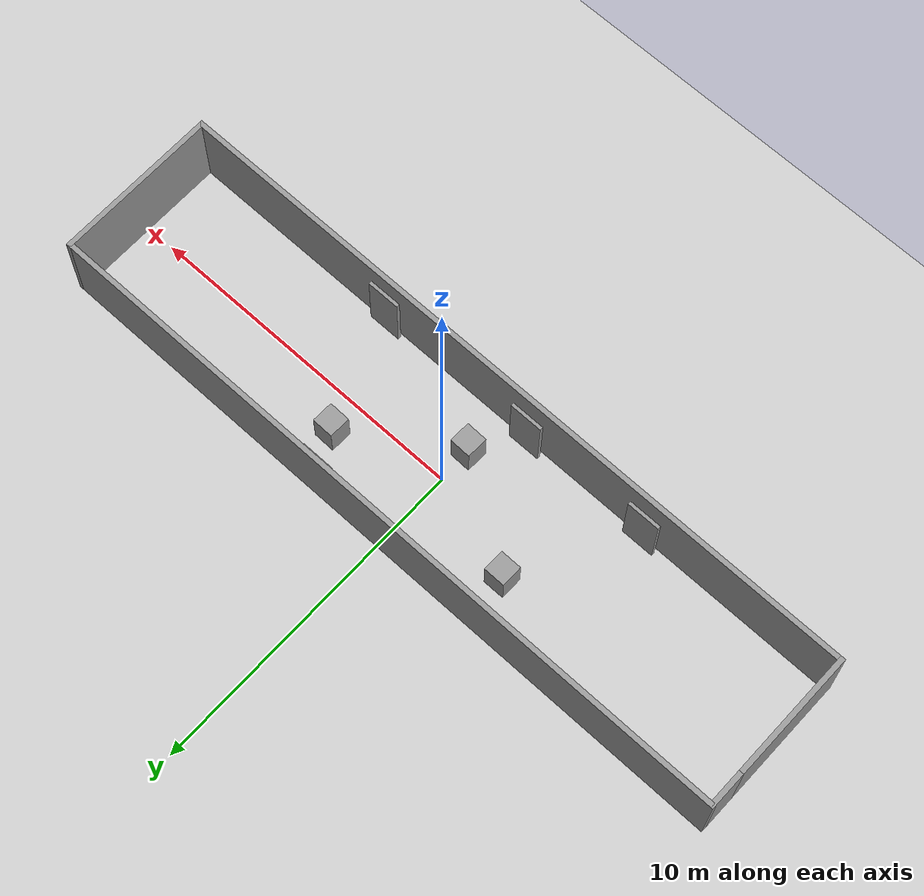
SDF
<sdf version="1.6">
 <world name="default">
  <light name="sun" type="directional">
   <pose>0 0 10 0 -0 0</pose>
   <diffuse>0.8 0.8 0.8 1</diffuse>
   <specular>0.2 0.2 0.2 1</specular>
   <attenuation>
    <range>1000</range>
    <constant>0.9</constant>
    <linear>0.01</linear>
    <quadratic>0.001</quadratic>
   </attenuation>
   <direction>-0.5 0.1 -0.9</direction>
  </light>
  <model name="ground_plane">
   <static>1</static>
   <link name="link">
    <collision name="collision">
     <geometry><plane><normal>0 0 1</normal><size>100 100</size></plane></geometry>
     <surface><friction><ode><mu>100</mu><mu2>50</mu2></ode></friction></surface>
    </collision>
    <visual name="visual">
     <cast_shadows>0</cast_shadows>
     <geometry><plane><normal>0 0 1</normal><size>100 100</size></plane></geometry>
     <material>
      <script><uri>file://media/materials/scripts/gazebo.material</uri><name>Gazebo/Grey</name></script>
     </material>
    </visual>
   </link>
  </model>
  <gravity>0 0 -9.8</gravity>
  <magnetic_field>6e-06 2.3e-05 -4.2e-05</magnetic_field>
  <atmosphere type="adiabatic"/>
  <physics name="default_physics" default="0" type="ode">
   <max_step_size>0.001</max_step_size>
   <real_time_factor>1</real_time_factor>
   <real_time_update_rate>1000</real_time_update_rate>
  </physics>
  <scene><ambient>0.4 0.4 0.4 1</ambient><background>0.7 0.7 0.7 1</background><shadows>1</shadows></scene>
  <spherical_coordinates>
   <surface_model>EARTH_WGS84</surface_model>
   <latitude_deg>0</latitude_deg>
   <longitude_deg>0</longitude_deg>
   <elevation>0</elevation>
   <heading_deg>0</heading_deg>
  </spherical_coordinates>
  <model name="long_sq">
   <link name="Wall_1">
    <collision name="Wall_1_Collision">
     <geometry><box><size>4 0.15 2.5</size></box></geometry>
     <pose>0 0 1.25 0 -0 0</pose>
    </collision>
    <visual name="Wall_1_Visual">
     <pose>0 0 1.25 0 -0 0</pose>
     <geometry><box><size>4 0.15 2.5</size></box></geometry>
     <material>
      <script><uri>file://media/materials/scripts/gazebo.material</uri><name>Gazebo/Grey</name></script>
      <ambient>1 1 1 1</ambient>
     </material>
     <meta><layer>0</layer></meta>
    </visual>
    <pose>-10.925 -0.5 0 0 -0 -1.5708</pose>
   </link>
   <link name="Wall_2">
    <collision name="Wall_2_Collision">
     <geometry><box><size>22 0.15 2.5</size></box></geometry>
     <pose>0 0 1.25 0 -0 0</pose>
    </collision>
    <visual name="Wall_2_Visual">
     <pose>0 0 1.25 0 -0 0</pose>
     <geometry><box><size>22 0.15 2.5</size></box></geometry>
     <material>
      <script><uri>file://media/materials/scripts/gazebo.material</uri><name>Gazebo/Grey</name></script>
      <ambient>1 1 1 1</ambient>
     </material>
     <meta><layer>0</layer></meta>
    </visual>
    <pose>-0 -2.425 0 0 -0 0</pose>
   </link>
   <link name="Wall_3">
    <collision name="Wall_3_Collision">
     <geometry><box><size>5 0.15 2.5</size></box></geometry>
     <pose>0 0 1.25 0 -0 0</pose>
    </collision>
    <visual name="Wall_3_Visual">
     <pose>0 0 1.25 0 -0 0</pose>
     <geometry><box><size>5 0.15 2.5</size></box></geometry>
     <material>
      <script><uri>file://media/materials/scripts/gazebo.material</uri><name>Gazebo/Grey</name></script>
      <ambient>1 1 1 1</ambient>
     </material>
     <meta><layer>0</layer></meta>
    </visual>
    <pose>10.925 0 0 0 -0 1.5708</pose>
   </link>
   <link name="Wall_4">
    <collision name="Wall_4_Collision">
     <geometry><box><size>22 0.15 2.5</size></box></geometry>
     <pose>0 0 1.25 0 -0 0</pose>
    </collision>
    <visual name="Wall_4_Visual">
     <pose>0 0 1.25 0 -0 0</pose>
     <geometry><box><size>22 0.15 2.5</size></box></geometry>
     <material>
      <script><uri>file://media/materials/scripts/gazebo.material</uri><name>Gazebo/Grey</name></script>
      <ambient>1 1 1 1</ambient>
     </material>
     <meta><layer>0</layer></meta>
    </visual>
    <pose>-0 2.425 0 0 -0 3.14159</pose>
   </link>
   <link name="Wall_5">
    <collision name="Wall_5_Collision">
     <geometry><box><size>1.15 0.15 2.5</size></box></geometry>
     <pose>0 0 1.25 0 -0 0</pose>
    </collision>
    <visual name="Wall_5_Visual">
     <pose>0 0 1.25 0 -0 0</pose>
     <geometry><box><size>1.15 0.15 2.5</size></box></geometry>
     <material>
      <script><uri>file://media/materials/scripts/gazebo.material</uri><name>Gazebo/Grey</name></script>
      <ambient>1 1 1 1</ambient>
     </material>
     <meta><layer>0</layer></meta>
    </visual>
    <pose>-10.925 1.925 0 0 -0 -1.5708</pose>
   </link>
   <static>1</static>
  </model>
  <model name="tiny_box">
   <link name="link">
    <inertial>
     <mass>1</mass>
     <inertia>
      <ixx>0.166667</ixx>
      <ixy>0</ixy>
      <ixz>0</ixz>
      <iyy>0.166667</iyy>
      <iyz>0</iyz>
      <izz>0.166667</izz>
     </inertia>
    </inertial>
    <visual name="visual">
     <geometry><box><size>1 0.1 2</size></box></geometry>
     <material>
      <script><name>Gazebo/Grey</name><uri>file://media/materials/scripts/gazebo.material</uri></script>
      <shader type="pixel"><normal_map>__default__</normal_map></shader>
      <ambient>0.3 0.3 0.3 1</ambient>
      <diffuse>0.7 0.7 0.7 1</diffuse>
      <specular>0.01 0.01 0.01 1</specular>
      <emissive>0 0 0 1</emissive>
     </material>
    </visual>
    <collision name="collision">
     <geometry><box><size>1 0.1 2</size></box></geometry>
     <surface>
      <friction>
       <ode><mu>1</mu><mu2>1</mu2><fdir1>0 0 0</fdir1><slip1>0</slip1><slip2>0</slip2></ode>
       <torsional>
        <coefficient>1</coefficient>
        <patch_radius>0</patch_radius>
        <surface_radius>0</surface_radius>
        <use_patch_radius>1</use_patch_radius>
        <ode><slip>0</slip></ode>
       </torsional>
      </friction>
      <bounce><restitution_coefficient>0</restitution_coefficient><threshold>1e+06</threshold></bounce>
      <contact>
       <collide_without_contact>0</collide_without_contact>
       <collide_without_contact_bitmask>1</collide_without_contact_bitmask>
       <collide_bitmask>1</collide_bitmask>
       <ode>
        <soft_cfm>0</soft_cfm>
        <soft_erp>0.2</soft_erp>
        <kp>1e+13</kp>
        <kd>1</kd>
        <max_vel>0.01</max_vel>
        <min_depth>0</min_depth>
       </ode>
       <bullet>
        <split_impulse>1</split_impulse>
        <split_impulse_penetration_threshold>-0.01</split_impulse_penetration_threshold>
        <soft_cfm>0</soft_cfm>
        <soft_erp>0.2</soft_erp>
        <kp>1e+13</kp>
        <kd>1</kd>
       </bullet>
      </contact>
     </surface>
    </collision>
   </link>
   <static>0</static>
   <pose>-6.6437 2.28184 1 1e-06 -0 4.9e-05</pose>
  </model>
  <model name="tiny_box_clone">
   <link name="link">
    <inertial>
     <mass>1</mass>
     <inertia>
      <ixx>0.166667</ixx>
      <ixy>0</ixy>
      <ixz>0</ixz>
      <iyy>0.166667</iyy>
      <iyz>0</iyz>
      <izz>0.166667</izz>
     </inertia>
    </inertial>
    <visual name="visual">
     <geometry><box><size>1 0.1 2</size></box></geometry>
     <material>
      <script><name>Gazebo/Grey</name><uri>file://media/materials/scripts/gazebo.material</uri></script>
      <shader type="pixel"><normal_map>__default__</normal_map></shader>
      <ambient>0.3 0.3 0.3 1</ambient>
      <diffuse>0.7 0.7 0.7 1</diffuse>
      <specular>0.01 0.01 0.01 1</specular>
      <emissive>0 0 0 1</emissive>
     </material>
    </visual>
    <collision name="collision">
     <geometry><box><size>1 0.1 2</size></box></geometry>
     <surface>
      <friction>
       <ode><mu>1</mu><mu2>1</mu2><fdir1>0 0 0</fdir1><slip1>0</slip1><slip2>0</slip2></ode>
       <torsional>
        <coefficient>1</coefficient>
        <patch_radius>0</patch_radius>
        <surface_radius>0</surface_radius>
        <use_patch_radius>1</use_patch_radius>
        <ode><slip>0</slip></ode>
       </torsional>
      </friction>
      <bounce><restitution_coefficient>0</restitution_coefficient><threshold>1e+06</threshold></bounce>
      <contact>
       <collide_without_contact>0</collide_without_contact>
       <collide_without_contact_bitmask>1</collide_without_contact_bitmask>
       <collide_bitmask>1</collide_bitmask>
       <ode>
        <soft_cfm>0</soft_cfm>
        <soft_erp>0.2</soft_erp>
        <kp>1e+13</kp>
        <kd>1</kd>
        <max_vel>0.01</max_vel>
        <min_depth>0</min_depth>
       </ode>
       <bullet>
        <split_impulse>1</split_impulse>
        <split_impulse_penetration_threshold>-0.01</split_impulse_penetration_threshold>
        <soft_cfm>0</soft_cfm>
        <soft_erp>0.2</soft_erp>
        <kp>1e+13</kp>
        <kd>1</kd>
       </bullet>
      </contact>
     </surface>
    </collision>
   </link>
   <static>0</static>
   <pose>-4.88092 -2.17582 1 -2e-06 -0 8.9e-05</pose>
  </model>
  <model name="tiny_box_clone_0">
   <link name="link">
    <inertial>
     <mass>1</mass>
     <inertia>
      <ixx>0.166667</ixx>
      <ixy>0</ixy>
      <ixz>0</ixz>
      <iyy>0.166667</iyy>
      <iyz>0</iyz>
      <izz>0.166667</izz>
     </inertia>
    </inertial>
    <visual name="visual">
     <geometry><box><size>1 0.1 2</size></box></geometry>
     <material>
      <script><name>Gazebo/Grey</name><uri>file://media/materials/scripts/gazebo.material</uri></script>
      <shader type="pixel"><normal_map>__default__</normal_map></shader>
      <ambient>0.3 0.3 0.3 1</ambient>
      <diffuse>0.7 0.7 0.7 1</diffuse>
      <specular>0.01 0.01 0.01 1</specular>
      <emissive>0 0 0 1</emissive>
     </material>
    </visual>
    <collision name="collision">
     <geometry><box><size>1 0.1 2</size></box></geometry>
     <surface>
      <friction>
       <ode><mu>1</mu><mu2>1</mu2><fdir1>0 0 0</fdir1><slip1>0</slip1><slip2>0</slip2></ode>
       <torsional>
        <coefficient>1</coefficient>
        <patch_radius>0</patch_radius>
        <surface_radius>0</surface_radius>
        <use_patch_radius>1</use_patch_radius>
        <ode><slip>0</slip></ode>
       </torsional>
      </friction>
      <bounce><restitution_coefficient>0</restitution_coefficient><threshold>1e+06</threshold></bounce>
      <contact>
       <collide_without_contact>0</collide_without_contact>
       <collide_without_contact_bitmask>1</collide_without_contact_bitmask>
       <collide_bitmask>1</collide_bitmask>
       <ode>
        <soft_cfm>0</soft_cfm>
        <soft_erp>0.2</soft_erp>
        <kp>1e+13</kp>
        <kd>1</kd>
        <max_vel>0.01</max_vel>
        <min_depth>0</min_depth>
       </ode>
       <bullet>
        <split_impulse>1</split_impulse>
        <split_impulse_penetration_threshold>-0.01</split_impulse_penetration_threshold>
        <soft_cfm>0</soft_cfm>
        <soft_erp>0.2</soft_erp>
        <kp>1e+13</kp>
        <kd>1</kd>
       </bullet>
      </contact>
     </surface>
    </collision>
   </link>
   <static>0</static>
   <pose>-1.49537 2.27619 1 1e-06 -2e-06 4.3e-05</pose>
  </model>
  <model name="tiny_box_clone_1">
   <link name="link">
    <inertial>
     <mass>1</mass>
     <inertia>
      <ixx>0.166667</ixx>
      <ixy>0</ixy>
      <ixz>0</ixz>
      <iyy>0.166667</iyy>
      <iyz>0</iyz>
      <izz>0.166667</izz>
     </inertia>
    </inertial>
    <visual name="visual">
     <geometry><box><size>1 0.1 2</size></box></geometry>
     <material>
      <script><name>Gazebo/Grey</name><uri>file://media/materials/scripts/gazebo.material</uri></script>
      <shader type="pixel"><normal_map>__default__</normal_map></shader>
      <ambient>0.3 0.3 0.3 1</ambient>
      <diffuse>0.7 0.7 0.7 1</diffuse>
      <specular>0.01 0.01 0.01 1</specular>
      <emissive>0 0 0 1</emissive>
     </material>
    </visual>
    <collision name="collision">
     <geometry><box><size>1 0.1 2</size></box></geometry>
     <surface>
      <friction>
       <ode><mu>1</mu><mu2>1</mu2><fdir1>0 0 0</fdir1><slip1>0</slip1><slip2>0</slip2></ode>
       <torsional>
        <coefficient>1</coefficient>
        <patch_radius>0</patch_radius>
        <surface_radius>0</surface_radius>
        <use_patch_radius>1</use_patch_radius>
        <ode><slip>0</slip></ode>
       </torsional>
      </friction>
      <bounce><restitution_coefficient>0</restitution_coefficient><threshold>1e+06</threshold></bounce>
      <contact>
       <collide_without_contact>0</collide_without_contact>
       <collide_without_contact_bitmask>1</collide_without_contact_bitmask>
       <collide_bitmask>1</collide_bitmask>
       <ode>
        <soft_cfm>0</soft_cfm>
        <soft_erp>0.2</soft_erp>
        <kp>1e+13</kp>
        <kd>1</kd>
        <max_vel>0.01</max_vel>
        <min_depth>0</min_depth>
       </ode>
       <bullet>
        <split_impulse>1</split_impulse>
        <split_impulse_penetration_threshold>-0.01</split_impulse_penetration_threshold>
        <soft_cfm>0</soft_cfm>
        <soft_erp>0.2</soft_erp>
        <kp>1e+13</kp>
        <kd>1</kd>
       </bullet>
      </contact>
     </surface>
    </collision>
   </link>
   <static>0</static>
   <pose>-0.92968 -2.17683 1 3e-06 -0 -0.00013</pose>
  </model>
  <model name="tiny_box_clone_2">
   <link name="link">
    <inertial>
     <mass>1</mass>
     <inertia>
      <ixx>0.166667</ixx>
      <ixy>0</ixy>
      <ixz>0</ixz>
      <iyy>0.166667</iyy>
      <iyz>0</iyz>
      <izz>0.166667</izz>
     </inertia>
    </inertial>
    <visual name="visual">
     <geometry><box><size>1 0.1 2</size></box></geometry>
     <material>
      <script><name>Gazebo/Grey</name><uri>file://media/materials/scripts/gazebo.material</uri></script>
      <shader type="pixel"><normal_map>__default__</normal_map></shader>
      <ambient>0.3 0.3 0.3 1</ambient>
      <diffuse>0.7 0.7 0.7 1</diffuse>
      <specular>0.01 0.01 0.01 1</specular>
      <emissive>0 0 0 1</emissive>
     </material>
    </visual>
    <collision name="collision">
     <geometry><box><size>1 0.1 2</size></box></geometry>
     <surface>
      <friction>
       <ode><mu>1</mu><mu2>1</mu2><fdir1>0 0 0</fdir1><slip1>0</slip1><slip2>0</slip2></ode>
       <torsional>
        <coefficient>1</coefficient>
        <patch_radius>0</patch_radius>
        <surface_radius>0</surface_radius>
        <use_patch_radius>1</use_patch_radius>
        <ode><slip>0</slip></ode>
       </torsional>
      </friction>
      <bounce><restitution_coefficient>0</restitution_coefficient><threshold>1e+06</threshold></bounce>
      <contact>
       <collide_without_contact>0</collide_without_contact>
       <collide_without_contact_bitmask>1</collide_without_contact_bitmask>
       <collide_bitmask>1</collide_bitmask>
       <ode>
        <soft_cfm>0</soft_cfm>
        <soft_erp>0.2</soft_erp>
        <kp>1e+13</kp>
        <kd>1</kd>
        <max_vel>0.01</max_vel>
        <min_depth>0</min_depth>
       </ode>
       <bullet>
        <split_impulse>1</split_impulse>
        <split_impulse_penetration_threshold>-0.01</split_impulse_penetration_threshold>
        <soft_cfm>0</soft_cfm>
        <soft_erp>0.2</soft_erp>
        <kp>1e+13</kp>
        <kd>1</kd>
       </bullet>
      </contact>
     </surface>
    </collision>
   </link>
   <static>0</static>
   <pose>2.23848 2.25635 1 1e-06 -1e-06 5.3e-05</pose>
  </model>
  <model name="tiny_box_clone_3">
   <link name="link">
    <inertial>
     <mass>1</mass>
     <inertia>
      <ixx>0.166667</ixx>
      <ixy>0</ixy>
      <ixz>0</ixz>
      <iyy>0.166667</iyy>
      <iyz>0</iyz>
      <izz>0.166667</izz>
     </inertia>
    </inertial>
    <visual name="visual">
     <geometry><box><size>1 0.1 2</size></box></geometry>
     <material>
      <script><name>Gazebo/Grey</name><uri>file://media/materials/scripts/gazebo.material</uri></script>
      <shader type="pixel"><normal_map>__default__</normal_map></shader>
      <ambient>0.3 0.3 0.3 1</ambient>
      <diffuse>0.7 0.7 0.7 1</diffuse>
      <specular>0.01 0.01 0.01 1</specular>
      <emissive>0 0 0 1</emissive>
     </material>
    </visual>
    <collision name="collision">
     <geometry><box><size>1 0.1 2</size></box></geometry>
     <surface>
      <friction>
       <ode><mu>1</mu><mu2>1</mu2><fdir1>0 0 0</fdir1><slip1>0</slip1><slip2>0</slip2></ode>
       <torsional>
        <coefficient>1</coefficient>
        <patch_radius>0</patch_radius>
        <surface_radius>0</surface_radius>
        <use_patch_radius>1</use_patch_radius>
        <ode><slip>0</slip></ode>
       </torsional>
      </friction>
      <bounce><restitution_coefficient>0</restitution_coefficient><threshold>1e+06</threshold></bounce>
      <contact>
       <collide_without_contact>0</collide_without_contact>
       <collide_without_contact_bitmask>1</collide_without_contact_bitmask>
       <collide_bitmask>1</collide_bitmask>
       <ode>
        <soft_cfm>0</soft_cfm>
        <soft_erp>0.2</soft_erp>
        <kp>1e+13</kp>
        <kd>1</kd>
        <max_vel>0.01</max_vel>
        <min_depth>0</min_depth>
       </ode>
       <bullet>
        <split_impulse>1</split_impulse>
        <split_impulse_penetration_threshold>-0.01</split_impulse_penetration_threshold>
        <soft_cfm>0</soft_cfm>
        <soft_erp>0.2</soft_erp>
        <kp>1e+13</kp>
        <kd>1</kd>
       </bullet>
      </contact>
     </surface>
    </collision>
   </link>
   <static>0</static>
   <pose>4.10825 -2.22656 0.999998 0 -3e-06 -0.000122</pose>
  </model>
  <model name="tiny_box_clone_4">
   <link name="link">
    <inertial>
     <mass>1</mass>
     <inertia>
      <ixx>0.166667</ixx>
      <ixy>0</ixy>
      <ixz>0</ixz>
      <iyy>0.166667</iyy>
      <iyz>0</iyz>
      <izz>0.166667</izz>
     </inertia>
    </inertial>
    <visual name="visual">
     <geometry><box><size>1 0.1 2</size></box></geometry>
     <material>
      <script><name>Gazebo/Grey</name><uri>file://media/materials/scripts/gazebo.material</uri></script>
      <shader type="pixel"><normal_map>__default__</normal_map></shader>
      <ambient>0.3 0.3 0.3 1</ambient>
      <diffuse>0.7 0.7 0.7 1</diffuse>
      <specular>0.01 0.01 0.01 1</specular>
      <emissive>0 0 0 1</emissive>
     </material>
    </visual>
    <collision name="collision">
     <geometry><box><size>1 0.1 2</size></box></geometry>
     <surface>
      <friction>
       <ode><mu>1</mu><mu2>1</mu2><fdir1>0 0 0</fdir1><slip1>0</slip1><slip2>0</slip2></ode>
       <torsional>
        <coefficient>1</coefficient>
        <patch_radius>0</patch_radius>
        <surface_radius>0</surface_radius>
        <use_patch_radius>1</use_patch_radius>
        <ode><slip>0</slip></ode>
       </torsional>
      </friction>
      <bounce><restitution_coefficient>0</restitution_coefficient><threshold>1e+06</threshold></bounce>
      <contact>
       <collide_without_contact>0</collide_without_contact>
       <collide_without_contact_bitmask>1</collide_without_contact_bitmask>
       <collide_bitmask>1</collide_bitmask>
       <ode>
        <soft_cfm>0</soft_cfm>
        <soft_erp>0.2</soft_erp>
        <kp>1e+13</kp>
        <kd>1</kd>
        <max_vel>0.01</max_vel>
        <min_depth>0</min_depth>
       </ode>
       <bullet>
        <split_impulse>1</split_impulse>
        <split_impulse_penetration_threshold>-0.01</split_impulse_penetration_threshold>
        <soft_cfm>0</soft_cfm>
        <soft_erp>0.2</soft_erp>
        <kp>1e+13</kp>
        <kd>1</kd>
       </bullet>
      </contact>
     </surface>
    </collision>
   </link>
   <static>0</static>
   <pose>6.86601 2.29998 0.999994 1e-06 -1e-06 -3e-06</pose>
  </model>
  <model name="box_65_clone">
   <link name="link">
    <inertial>
     <mass>1</mass>
     <inertia>
      <ixx>0.166667</ixx>
      <ixy>0</ixy>
      <ixz>0</ixz>
      <iyy>0.166667</iyy>
      <iyz>0</iyz>
      <izz>0.166667</izz>
     </inertia>
    </inertial>
    <visual name="visual">
     <geometry><box><size>0.65 0.65 1</size></box></geometry>
     <material>
      <script><name>Gazebo/Grey</name><uri>file://media/materials/scripts/gazebo.material</uri></script>
      <shader type="pixel"><normal_map>__default__</normal_map></shader>
      <ambient>0.3 0.3 0.3 1</ambient>
      <diffuse>0.7 0.7 0.7 1</diffuse>
      <specular>0.01 0.01 0.01 1</specular>
      <emissive>0 0 0 1</emissive>
     </material>
    </visual>
    <collision name="collision">
     <geometry><box><size>0.65 0.65 1</size></box></geometry>
     <surface>
      <friction>
       <ode><mu>1</mu><mu2>1</mu2><fdir1>0 0 0</fdir1><slip1>0</slip1><slip2>0</slip2></ode>
       <torsional>
        <coefficient>1</coefficient>
        <patch_radius>0</patch_radius>
        <surface_radius>0</surface_radius>
        <use_patch_radius>1</use_patch_radius>
        <ode><slip>0</slip></ode>
       </torsional>
      </friction>
      <bounce><restitution_coefficient>0</restitution_coefficient><threshold>1e+06</threshold></bounce>
      <contact>
       <collide_without_contact>0</collide_without_contact>
       <collide_without_contact_bitmask>1</collide_without_contact_bitmask>
       <collide_bitmask>1</collide_bitmask>
       <ode>
        <soft_cfm>0</soft_cfm>
        <soft_erp>0.2</soft_erp>
        <kp>1e+13</kp>
        <kd>1</kd>
        <max_vel>0.01</max_vel>
        <min_depth>0</min_depth>
       </ode>
       <bullet>
        <split_impulse>1</split_impulse>
        <split_impulse_penetration_threshold>-0.01</split_impulse_penetration_threshold>
        <soft_cfm>0</soft_cfm>
        <soft_erp>0.2</soft_erp>
        <kp>1e+13</kp>
        <kd>1</kd>
       </bullet>
      </contact>
     </surface>
    </collision>
   </link>
   <static>0</static>
   <pose>3 1 0.499998 -2e-06 -4e-06 -0.021464</pose>
  </model>
  <model name="box_65_clone_0">
   <link name="link">
    <inertial>
     <mass>1</mass>
     <inertia>
      <ixx>0.166667</ixx>
      <ixy>0</ixy>
      <ixz>0</ixz>
      <iyy>0.166667</iyy>
      <iyz>0</iyz>
      <izz>0.166667</izz>
     </inertia>
    </inertial>
    <visual name="visual">
     <geometry><box><size>0.65 0.65 1</size></box></geometry>
     <material>
      <script><name>Gazebo/Grey</name><uri>file://media/materials/scripts/gazebo.material</uri></script>
      <shader type="pixel"><normal_map>__default__</normal_map></shader>
      <ambient>0.3 0.3 0.3 1</ambient>
      <diffuse>0.7 0.7 0.7 1</diffuse>
      <specular>0.01 0.01 0.01 1</specular>
      <emissive>0 0 0 1</emissive>
     </material>
    </visual>
    <collision name="collision">
     <geometry><box><size>0.65 0.65 1</size></box></geometry>
     <surface>
      <friction>
       <ode><mu>1</mu><mu2>1</mu2><fdir1>0 0 0</fdir1><slip1>0</slip1><slip2>0</slip2></ode>
       <torsional>
        <coefficient>1</coefficient>
        <patch_radius>0</patch_radius>
        <surface_radius>0</surface_radius>
        <use_patch_radius>1</use_patch_radius>
        <ode><slip>0</slip></ode>
       </torsional>
      </friction>
      <bounce><restitution_coefficient>0</restitution_coefficient><threshold>1e+06</threshold></bounce>
      <contact>
       <collide_without_contact>0</collide_without_contact>
       <collide_without_contact_bitmask>1</collide_without_contact_bitmask>
       <collide_bitmask>1</collide_bitmask>
       <ode>
        <soft_cfm>0</soft_cfm>
        <soft_erp>0.2</soft_erp>
        <kp>1e+13</kp>
        <kd>1</kd>
        <max_vel>0.01</max_vel>
        <min_depth>0</min_depth>
       </ode>
       <bullet>
        <split_impulse>1</split_impulse>
        <split_impulse_penetration_threshold>-0.01</split_impulse_penetration_threshold>
        <soft_cfm>0</soft_cfm>
        <soft_erp>0.2</soft_erp>
        <kp>1e+13</kp>
        <kd>1</kd>
       </bullet>
      </contact>
     </surface>
    </collision>
   </link>
   <static>0</static>
   <pose>-3 1 0.5 0 -0 0</pose>
  </model>
  <model name="box_65_clone_clone">
   <link name="link">
    <inertial>
     <mass>1</mass>
     <inertia>
      <ixx>0.166667</ixx>
      <ixy>0</ixy>
      <ixz>0</ixz>
      <iyy>0.166667</iyy>
      <iyz>0</iyz>
      <izz>0.166667</izz>
     </inertia>
    </inertial>
    <visual name="visual">
     <geometry><box><size>0.65 0.65 1</size></box></geometry>
     <material>
      <script><name>Gazebo/Grey</name><uri>file://media/materials/scripts/gazebo.material</uri></script>
      <shader type="pixel"><normal_map>__default__</normal_map></shader>
      <ambient>0.3 0.3 0.3 1</ambient>
      <diffuse>0.7 0.7 0.7 1</diffuse>
      <specular>0.01 0.01 0.01 1</specular>
      <emissive>0 0 0 1</emissive>
     </material>
    </visual>
    <collision name="collision">
     <geometry><box><size>0.65 0.65 1</size></box></geometry>
     <surface>
      <friction>
       <ode><mu>1</mu><mu2>1</mu2><fdir1>0 0 0</fdir1><slip1>0</slip1><slip2>0</slip2></ode>
       <torsional>
        <coefficient>1</coefficient>
        <patch_radius>0</patch_radius>
        <surface_radius>0</surface_radius>
        <use_patch_radius>1</use_patch_radius>
        <ode><slip>0</slip></ode>
       </torsional>
      </friction>
      <bounce><restitution_coefficient>0</restitution_coefficient><threshold>1e+06</threshold></bounce>
      <contact>
       <collide_without_contact>0</collide_without_contact>
       <collide_without_contact_bitmask>1</collide_without_contact_bitmask>
       <collide_bitmask>1</collide_bitmask>
       <ode>
        <soft_cfm>0</soft_cfm>
        <soft_erp>0.2</soft_erp>
        <kp>1e+13</kp>
        <kd>1</kd>
        <max_vel>0.01</max_vel>
        <min_depth>0</min_depth>
       </ode>
       <bullet>
        <split_impulse>1</split_impulse>
        <split_impulse_penetration_threshold>-0.01</split_impulse_penetration_threshold>
        <soft_cfm>0</soft_cfm>
        <soft_erp>0.2</soft_erp>
        <kp>1e+13</kp>
        <kd>1</kd>
       </bullet>
      </contact>
     </surface>
    </collision>
   </link>
   <static>0</static>
   <pose>0 -1 0.499998 -2e-06 -4e-06 -0.021464</pose>
  </model>
 </world>
</sdf>
